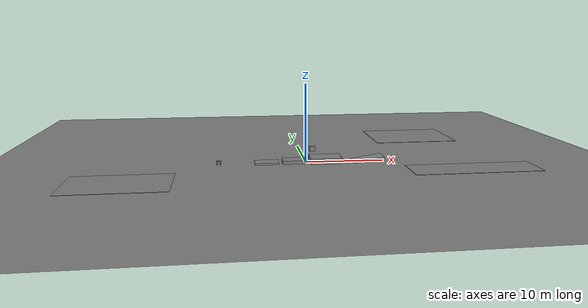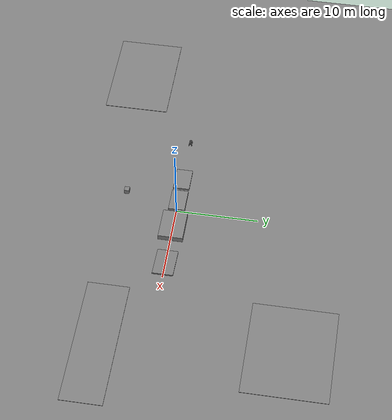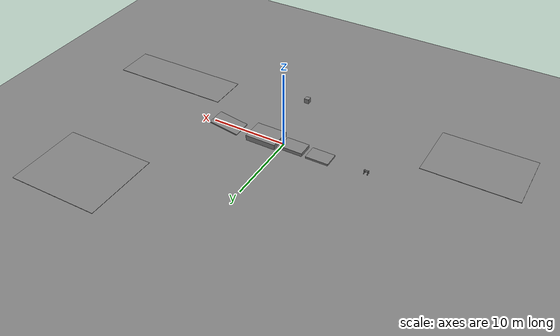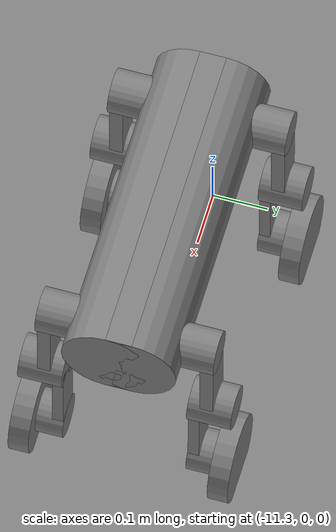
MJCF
<mujoco model="worldstage_physical_world">
  <compiler angle="radian" coordinate="local" />
  <option gravity="0 0 -9.81" timestep="0.005" />
  <worldbody>
    <geom name="ground" type="plane" size="40 40 0.1" friction="0.8 0.01 0.0001" />
    <body name="step-a" pos="-5.0 0.0 0.12" euler="0 0 0">
      <geom name="step-a-geom" type="box" size="1.5 1.0 0.12" friction="0.85 0.01 0.0001" />
    </body>
    <body name="step-b" pos="-1.5 0.0 0.22" euler="0 0 0">
      <geom name="step-b-geom" type="box" size="1.5 1.0 0.22" friction="0.85 0.01 0.0001" />
    </body>
    <body name="platform" pos="2.5 0.0 0.35" euler="0 0 0">
      <geom name="platform-geom" type="box" size="2.0 1.5 0.35" friction="0.8 0.01 0.0001" />
    </body>
    <body name="ramp" pos="8.0 0.0 0.27" euler="0 -0.15 0">
      <geom name="ramp-geom" type="box" size="2.0 1.25 0.08" friction="0.65 0.01 0.0001" />
    </body>
    <body name="test-cube" pos="0.0 -6.0 3.0" euler="0 0 0">
      <freejoint />
      <geom name="test-cube-geom" type="box" size="0.3 0.3 0.3" friction="0.65 0.01 0.0001" mass="2.0" />
    </body>
    <body name="wet-yard" pos="-22.0 -8.0 0.025" euler="0 0 0">
      <geom name="wet-yard-geom" type="box" size="6.0 4.0 0.025" friction="0.25 0.01 0.0001" />
    </body>
    <body name="rough-lane" pos="20.0 -6.0 0.025" euler="0 0 0">
      <geom name="rough-lane-geom" type="box" size="8.0 2.5 0.025" friction="1.15 0.01 0.0001" />
    </body>
    <body name="wood-yard" pos="18.0 16.0 0.025" euler="0 0 0">
      <geom name="wood-yard-geom" type="box" size="6.0 5.0 0.025" friction="0.55 0.01 0.0001" />
    </body>
    <body name="base_link" pos="-11 0 0.42">
      <freejoint />
      <inertial pos="-0.000512 0.057317 0.001182" mass="8.023087" fullinertia="0.115559 0.171329 0.262028 -0.000178 -0.000090 -0.000650" />
      <geom size="0.08 0.3" pos="0 0.024 0" quat="0.707107 0 0.707107 0" type="cylinder" />
      <geom size="0.08 0.3" pos="0 -0.024 0" quat="0.707107 0 0.707107 0" type="cylinder" />
      <geom size="0.08 0.024 0.3" quat="0.707107 0 0.707107 0" type="box" />
      <body name="fl_hipx" pos="0.2277 0.0574 0">
        <inertial pos="-0.005034 0.023524 4.6e-05" quat="0.25609 0.665262 -0.228203 0.663151" mass="0.627405" diaginertia="0.000415056 0.000391723 0.000223221" />
        <joint name="fl_hipx_joint" range="-0.6109 0.6109" actuatorfrcrange="-50 50" axis="-1 0 0" />
        <geom size="0.04 0.05" pos="0 0.054 0" quat="0.707107 0.707107 0 0" type="cylinder" />
        <body name="fl_hipy" pos="0 0.0779 0">
          <inertial pos="7.4e-05 0.018439 -0.129675" quat="0.701304 -0.0510426 0.0516389 0.709155" mass="0.885874" diaginertia="0.00454086 0.00445199 0.00030515" />
          <joint name="fl_hipy_joint" range="-2.5307 2.5307" actuatorfrcrange="-50 50" axis="0 -1 0" />
          <geom size="0.032 0.012 0.09" pos="0 0.012 -0.09" type="box" />
          <geom size="0.04 0.04" pos="0 0.018 -0.18" quat="0.707107 0.707107 0 0" type="cylinder" />
          <body name="fl_knee" pos="0 0 -0.18">
            <inertial pos="-3.2e-05 0.013504 -0.156308" quat="0.703786 -0.068447 0.068447 0.703786" mass="0.640283" diaginertia="0.0022296 0.002221 0.000193398" />
            <joint name="fl_knee_joint" range="-2.7227 2.7227" actuatorfrcrange="-50 50" axis="0 -1 0" />
            <geom size="0.029 0.01 0.09" pos="0 -0.012 -0.09" type="box" />
            <geom size="0.04 0.025" pos="0 0.002 -0.18" quat="0.707107 0.707107 0 0" type="cylinder" />
            <body name="fl_wheel" pos="0 0.045891 -0.18">
              <inertial pos="-8e-06 0.001694 -5e-06" quat="0.707107 0 0 0.707107" mass="0.587952" diaginertia="0.002003 0.001059 0.001059" />
              <joint name="fl_wheel_joint" actuatorfrcrange="-14 14" axis="0 -1 0" />
              <geom size="0.081 0.0185" quat="0.707107 0.707107 0 0" type="cylinder" />
            </body>
          </body>
        </body>
      </body>
      <body name="fr_hipx" pos="0.2277 -0.0574 0">
        <inertial pos="-0.004831 -0.02349 0.000169" quat="-0.278522 0.675499 0.205833 0.650968" mass="0.626546" diaginertia="0.000415238 0.000395047 0.000218715" />
        <joint name="fr_hipx_joint" range="-0.6109 0.6109" actuatorfrcrange="-50 50" axis="-1 0 0" />
        <geom size="0.04 0.05" pos="0 -0.054 0" quat="0.707107 0.707107 0 0" type="cylinder" />
        <body name="fr_hipy" pos="0 -0.0779 0">
          <inertial pos="-7.4e-05 -0.018439 -0.129675" quat="0.701304 0.0510426 -0.0516389 0.709155" mass="0.885874" diaginertia="0.00454086 0.00445199 0.00030515" />
          <joint name="fr_hipy_joint" range="-2.5307 2.5307" actuatorfrcrange="-50 50" axis="0 -1 0" />
          <geom size="0.032 0.012 0.09" pos="0 -0.012 -0.09" type="box" />
          <geom size="0.04 0.04" pos="0 -0.018 -0.18" quat="0.707107 0.707107 0 0" type="cylinder" />
          <body name="fr_knee" pos="0 0 -0.18">
            <inertial pos="3.2e-05 -0.013504 -0.156308" quat="0.703786 0.068447 -0.068447 0.703786" mass="0.640283" diaginertia="0.0022296 0.002221 0.000193398" />
            <joint name="fr_knee_joint" range="-2.7227 2.7227" actuatorfrcrange="-50 50" axis="0 -1 0" />
            <geom size="0.029 0.01 0.09" pos="0 0.012 -0.09" type="box" />
            <geom size="0.04 0.025" pos="0 -0.002 -0.18" quat="0.707107 0.707107 0 0" type="cylinder" />
            <body name="fr_wheel" pos="0 -0.045891 -0.18">
              <inertial pos="8e-06 -0.001694 5e-06" quat="0.707107 0 0 0.707107" mass="0.587952" diaginertia="0.002003 0.001059 0.001059" />
              <joint name="fr_wheel_joint" actuatorfrcrange="-14 14" axis="0 -1 0" />
              <geom size="0.081 0.0185" quat="0.707107 0.707107 0 0" type="cylinder" />
            </body>
          </body>
        </body>
      </body>
      <body name="hl_hipx" pos="-0.2277 0.0574 0">
        <inertial pos="0.004831 0.02349 0.000169" quat="-0.205833 0.650968 0.278522 0.675499" mass="0.626546" diaginertia="0.000415238 0.000395047 0.000218715" />
        <joint name="hl_hipx_joint" range="-0.6109 0.6109" actuatorfrcrange="-50 50" axis="-1 0 0" />
        <geom size="0.04 0.05" pos="0 0.054 0" quat="0.707107 0.707107 0 0" type="cylinder" />
        <body name="hl_hipy" pos="0 0.0779 0">
          <inertial pos="7.4e-05 0.018439 -0.129675" quat="0.701304 -0.0510426 0.0516389 0.709155" mass="0.885874" diaginertia="0.00454086 0.00445199 0.00030515" />
          <joint name="hl_hipy_joint" range="-2.5307 2.5307" actuatorfrcrange="-50 50" axis="0 -1 0" />
          <geom size="0.032 0.012 0.09" pos="0 0.012 -0.09" type="box" />
          <geom size="0.04 0.04" pos="0 0.018 -0.18" quat="0.707107 0.707107 0 0" type="cylinder" />
          <body name="hl_knee" pos="0 0 -0.18">
            <inertial pos="-3.2e-05 0.013504 -0.156308" quat="0.703786 -0.068447 0.068447 0.703786" mass="0.640283" diaginertia="0.0022296 0.002221 0.000193398" />
            <joint name="hl_knee_joint" range="-2.7227 2.7227" actuatorfrcrange="-50 50" axis="0 -1 0" />
            <geom size="0.029 0.01 0.09" pos="0 -0.012 -0.09" type="box" />
            <geom size="0.04 0.025" pos="0 0.002 -0.18" quat="0.707107 0.707107 0 0" type="cylinder" />
            <body name="hl_wheel" pos="0 0.045891 -0.18">
              <inertial pos="-8e-06 0.001694 -5e-06" quat="0.707107 0 0 0.707107" mass="0.587952" diaginertia="0.002003 0.001059 0.001059" />
              <joint name="hl_wheel_joint" actuatorfrcrange="-14 14" axis="0 -1 0" />
              <geom size="0.081 0.0185" quat="0.707107 0.707107 0 0" type="cylinder" />
            </body>
          </body>
        </body>
      </body>
      <body name="hr_hipx" pos="-0.2277 -0.0574 0">
        <inertial pos="0.005034 -0.023524 4.6e-05" quat="0.228203 0.663151 -0.25609 0.665262" mass="0.627405" diaginertia="0.000415056 0.000391723 0.000223221" />
        <joint name="hr_hipx_joint" range="-0.6109 0.6109" actuatorfrcrange="-50 50" axis="-1 0 0" />
        <geom size="0.04 0.05" pos="0 -0.054 0" quat="0.707107 0.707107 0 0" type="cylinder" />
        <body name="hr_hipy" pos="0 -0.0779 0">
          <inertial pos="-7.4e-05 -0.018439 -0.129675" quat="0.701304 0.0510426 -0.0516389 0.709155" mass="0.885874" diaginertia="0.00454086 0.00445199 0.00030515" />
          <joint name="hr_hipy_joint" range="-2.5307 2.5307" actuatorfrcrange="-50 50" axis="0 -1 0" />
          <geom size="0.032 0.012 0.09" pos="0 -0.012 -0.09" type="box" />
          <geom size="0.04 0.04" pos="0 -0.018 -0.18" quat="0.707107 0.707107 0 0" type="cylinder" />
          <body name="hr_knee" pos="0 0 -0.18">
            <inertial pos="3.2e-05 -0.013504 -0.156308" quat="0.703786 0.068447 -0.068447 0.703786" mass="0.640283" diaginertia="0.0022296 0.002221 0.000193398" />
            <joint name="hr_knee_joint" range="-2.7227 2.7227" actuatorfrcrange="-50 50" axis="0 -1 0" />
            <geom size="0.029 0.01 0.09" pos="0 0.012 -0.09" type="box" />
            <geom size="0.04 0.025" pos="0 -0.002 -0.18" quat="0.707107 0.707107 0 0" type="cylinder" />
            <body name="hr_wheel" pos="0 -0.045891 -0.18">
              <inertial pos="8e-06 -0.001694 5e-06" quat="0.707107 0 0 0.707107" mass="0.587952" diaginertia="0.002003 0.001059 0.001059" />
              <joint name="hr_wheel_joint" actuatorfrcrange="-14 14" axis="0 -1 0" />
              <geom size="0.081 0.0185" quat="0.707107 0.707107 0 0" type="cylinder" />
            </body>
          </body>
        </body>
      </body>
    </body>
  </worldbody>
</mujoco>
